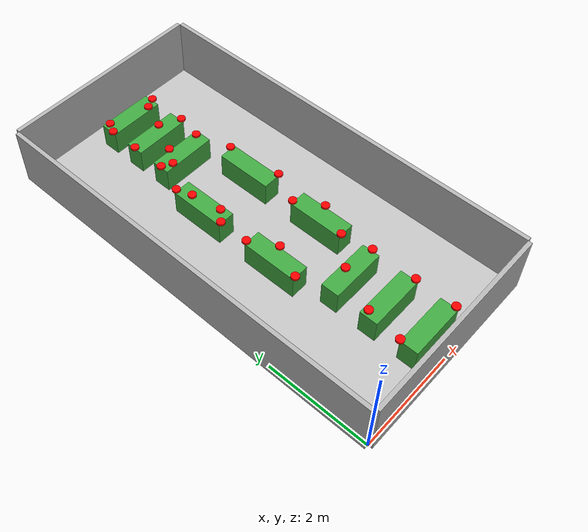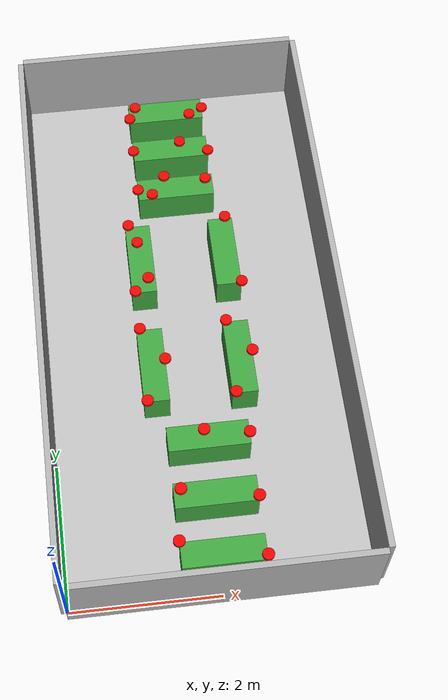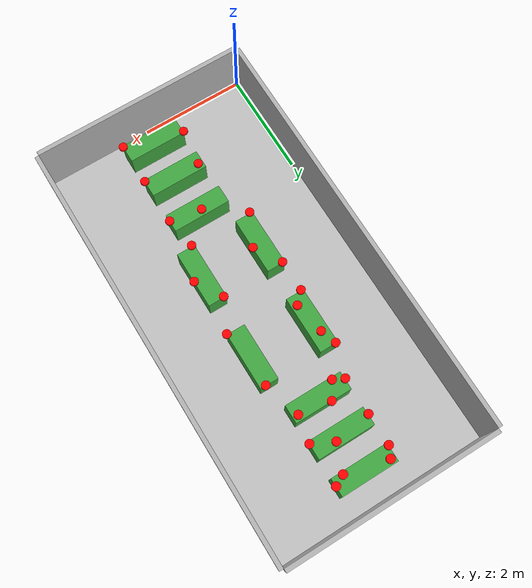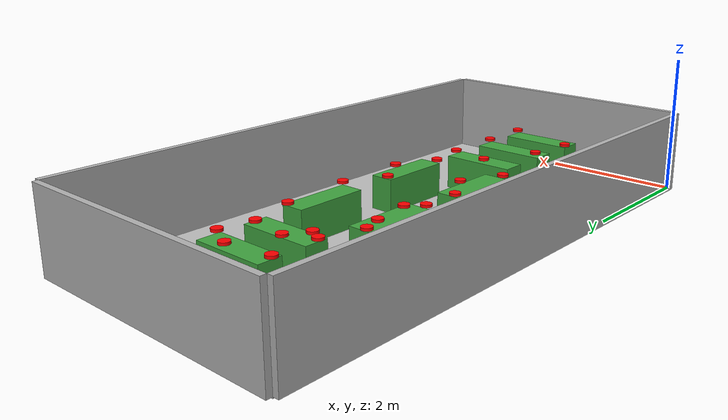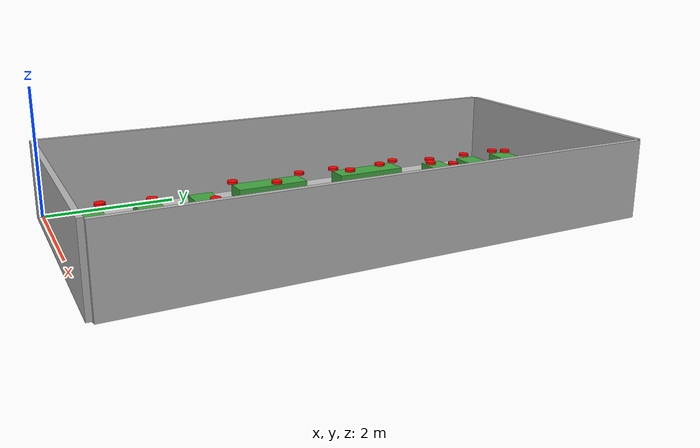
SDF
<?xml version="1.0" ?>
<sdf version="1.6">
  <world name="greenhouse_world">

    <include>
      <uri>model://sun</uri>
    </include>

    <model name="greenhouse_floor">
      <static>true</static>
      <pose>2.000 4.000 -0.010 0 0 0</pose>
      <link name="link">

        <collision name="collision">
          <geometry>
            <box>
              <size>4.000 8.000 0.020</size>
            </box>
          </geometry>
        </collision>

        <visual name="visual">
          <geometry>
            <box>
              <size>4.000 8.000 0.020</size>
            </box>
          </geometry>
          <material>
            <ambient>0.75 0.75 0.75 1</ambient>
            <diffuse>0.75 0.75 0.75 1</diffuse>
          </material>
        </visual>

      </link>
    </model>

    <model name="wall_left">
      <static>true</static>
      <pose>-0.040 4.000 0.600 0 0 0</pose>
      <link name="link">

        <collision name="collision">
          <geometry>
            <box>
              <size>0.080 8.000 1.200</size>
            </box>
          </geometry>
        </collision>

        <visual name="visual">
          <geometry>
            <box>
              <size>0.080 8.000 1.200</size>
            </box>
          </geometry>
          <material>
            <ambient>0.7 0.7 0.7 1</ambient>
            <diffuse>0.7 0.7 0.7 1</diffuse>
          </material>
        </visual>

      </link>
    </model>

    <model name="wall_right">
      <static>true</static>
      <pose>4.040 4.000 0.600 0 0 0</pose>
      <link name="link">

        <collision name="collision">
          <geometry>
            <box>
              <size>0.080 8.000 1.200</size>
            </box>
          </geometry>
        </collision>

        <visual name="visual">
          <geometry>
            <box>
              <size>0.080 8.000 1.200</size>
            </box>
          </geometry>
          <material>
            <ambient>0.7 0.7 0.7 1</ambient>
            <diffuse>0.7 0.7 0.7 1</diffuse>
          </material>
        </visual>

      </link>
    </model>

    <model name="wall_bottom">
      <static>true</static>
      <pose>2.000 -0.040 0.600 0 0 0</pose>
      <link name="link">

        <collision name="collision">
          <geometry>
            <box>
              <size>4.000 0.080 1.200</size>
            </box>
          </geometry>
        </collision>

        <visual name="visual">
          <geometry>
            <box>
              <size>4.000 0.080 1.200</size>
            </box>
          </geometry>
          <material>
            <ambient>0.7 0.7 0.7 1</ambient>
            <diffuse>0.7 0.7 0.7 1</diffuse>
          </material>
        </visual>

      </link>
    </model>

    <model name="wall_top">
      <static>true</static>
      <pose>2.000 8.040 0.600 0 0 0</pose>
      <link name="link">

        <collision name="collision">
          <geometry>
            <box>
              <size>4.000 0.080 1.200</size>
            </box>
          </geometry>
        </collision>

        <visual name="visual">
          <geometry>
            <box>
              <size>4.000 0.080 1.200</size>
            </box>
          </geometry>
          <material>
            <ambient>0.7 0.7 0.7 1</ambient>
            <diffuse>0.7 0.7 0.7 1</diffuse>
          </material>
        </visual>

      </link>
    </model>

    <model name="table1">
      <static>true</static>
      <pose>2.050 7.425 0.250 0 0 0</pose>
      <link name="link">

        <collision name="collision">
          <geometry>
            <box>
              <size>1.100 0.350 0.500</size>
            </box>
          </geometry>
        </collision>

        <visual name="visual">
          <geometry>
            <box>
              <size>1.100 0.350 0.500</size>
            </box>
          </geometry>
          <material>
            <ambient>0.25 0.65 0.25 1</ambient>
            <diffuse>0.25 0.65 0.25 1</diffuse>
          </material>
        </visual>

      </link>
    </model>

    <model name="table2">
      <static>true</static>
      <pose>2.050 6.725 0.250 0 0 0</pose>
      <link name="link">

        <collision name="collision">
          <geometry>
            <box>
              <size>1.100 0.350 0.500</size>
            </box>
          </geometry>
        </collision>

        <visual name="visual">
          <geometry>
            <box>
              <size>1.100 0.350 0.500</size>
            </box>
          </geometry>
          <material>
            <ambient>0.25 0.65 0.25 1</ambient>
            <diffuse>0.25 0.65 0.25 1</diffuse>
          </material>
        </visual>

      </link>
    </model>

    <model name="table3">
      <static>true</static>
      <pose>2.050 6.025 0.250 0 0 0</pose>
      <link name="link">

        <collision name="collision">
          <geometry>
            <box>
              <size>1.100 0.350 0.500</size>
            </box>
          </geometry>
        </collision>

        <visual name="visual">
          <geometry>
            <box>
              <size>1.100 0.350 0.500</size>
            </box>
          </geometry>
          <material>
            <ambient>0.25 0.65 0.25 1</ambient>
            <diffuse>0.25 0.65 0.25 1</diffuse>
          </material>
        </visual>

      </link>
    </model>

    <model name="table4">
      <static>true</static>
      <pose>1.425 4.850 0.250 0 0 0</pose>
      <link name="link">

        <collision name="collision">
          <geometry>
            <box>
              <size>0.350 1.100 0.500</size>
            </box>
          </geometry>
        </collision>

        <visual name="visual">
          <geometry>
            <box>
              <size>0.350 1.100 0.500</size>
            </box>
          </geometry>
          <material>
            <ambient>0.25 0.65 0.25 1</ambient>
            <diffuse>0.25 0.65 0.25 1</diffuse>
          </material>
        </visual>

      </link>
    </model>

    <model name="table5">
      <static>true</static>
      <pose>2.625 4.850 0.250 0 0 0</pose>
      <link name="link">

        <collision name="collision">
          <geometry>
            <box>
              <size>0.350 1.100 0.500</size>
            </box>
          </geometry>
        </collision>

        <visual name="visual">
          <geometry>
            <box>
              <size>0.350 1.100 0.500</size>
            </box>
          </geometry>
          <material>
            <ambient>0.25 0.65 0.25 1</ambient>
            <diffuse>0.25 0.65 0.25 1</diffuse>
          </material>
        </visual>

      </link>
    </model>

    <model name="table6">
      <static>true</static>
      <pose>1.425 3.150 0.250 0 0 0</pose>
      <link name="link">

        <collision name="collision">
          <geometry>
            <box>
              <size>0.350 1.100 0.500</size>
            </box>
          </geometry>
        </collision>

        <visual name="visual">
          <geometry>
            <box>
              <size>0.350 1.100 0.500</size>
            </box>
          </geometry>
          <material>
            <ambient>0.25 0.65 0.25 1</ambient>
            <diffuse>0.25 0.65 0.25 1</diffuse>
          </material>
        </visual>

      </link>
    </model>

    <model name="table7">
      <static>true</static>
      <pose>2.625 3.150 0.250 0 0 0</pose>
      <link name="link">

        <collision name="collision">
          <geometry>
            <box>
              <size>0.350 1.100 0.500</size>
            </box>
          </geometry>
        </collision>

        <visual name="visual">
          <geometry>
            <box>
              <size>0.350 1.100 0.500</size>
            </box>
          </geometry>
          <material>
            <ambient>0.25 0.65 0.25 1</ambient>
            <diffuse>0.25 0.65 0.25 1</diffuse>
          </material>
        </visual>

      </link>
    </model>

    <model name="table8">
      <static>true</static>
      <pose>2.050 2.025 0.250 0 0 0</pose>
      <link name="link">

        <collision name="collision">
          <geometry>
            <box>
              <size>1.100 0.350 0.500</size>
            </box>
          </geometry>
        </collision>

        <visual name="visual">
          <geometry>
            <box>
              <size>1.100 0.350 0.500</size>
            </box>
          </geometry>
          <material>
            <ambient>0.25 0.65 0.25 1</ambient>
            <diffuse>0.25 0.65 0.25 1</diffuse>
          </material>
        </visual>

      </link>
    </model>

    <model name="table9">
      <static>true</static>
      <pose>2.050 1.225 0.250 0 0 0</pose>
      <link name="link">

        <collision name="collision">
          <geometry>
            <box>
              <size>1.100 0.350 0.500</size>
            </box>
          </geometry>
        </collision>

        <visual name="visual">
          <geometry>
            <box>
              <size>1.100 0.350 0.500</size>
            </box>
          </geometry>
          <material>
            <ambient>0.25 0.65 0.25 1</ambient>
            <diffuse>0.25 0.65 0.25 1</diffuse>
          </material>
        </visual>

      </link>
    </model>

    <model name="table10">
      <static>true</static>
      <pose>2.050 0.425 0.250 0 0 0</pose>
      <link name="link">

        <collision name="collision">
          <geometry>
            <box>
              <size>1.100 0.350 0.500</size>
            </box>
          </geometry>
        </collision>

        <visual name="visual">
          <geometry>
            <box>
              <size>1.100 0.350 0.500</size>
            </box>
          </geometry>
          <material>
            <ambient>0.25 0.65 0.25 1</ambient>
            <diffuse>0.25 0.65 0.25 1</diffuse>
          </material>
        </visual>

      </link>
    </model>

    <model name="6">
      <static>true</static>
      <pose>1.500 7.300 0.550 0 0 0</pose>
      <link name="link">

        <visual name="visual">
          <geometry>
            <cylinder>
              <radius>0.080</radius>
              <length>0.040</length>
            </cylinder>
          </geometry>
          <material>
            <ambient>1 0 0 1</ambient>
            <diffuse>1 0 0 1</diffuse>
          </material>
        </visual>

      </link>
    </model>

    <model name="21">
      <static>true</static>
      <pose>1.600 7.500 0.550 0 0 0</pose>
      <link name="link">

        <visual name="visual">
          <geometry>
            <cylinder>
              <radius>0.080</radius>
              <length>0.040</length>
            </cylinder>
          </geometry>
          <material>
            <ambient>1 0 0 1</ambient>
            <diffuse>1 0 0 1</diffuse>
          </material>
        </visual>

      </link>
    </model>

    <model name="29">
      <static>true</static>
      <pose>2.400 7.300 0.550 0 0 0</pose>
      <link name="link">

        <visual name="visual">
          <geometry>
            <cylinder>
              <radius>0.080</radius>
              <length>0.040</length>
            </cylinder>
          </geometry>
          <material>
            <ambient>1 0 0 1</ambient>
            <diffuse>1 0 0 1</diffuse>
          </material>
        </visual>

      </link>
    </model>

    <model name="7">
      <static>true</static>
      <pose>2.600 7.400 0.550 0 0 0</pose>
      <link name="link">

        <visual name="visual">
          <geometry>
            <cylinder>
              <radius>0.080</radius>
              <length>0.040</length>
            </cylinder>
          </geometry>
          <material>
            <ambient>1 0 0 1</ambient>
            <diffuse>1 0 0 1</diffuse>
          </material>
        </visual>

      </link>
    </model>

    <model name="30">
      <static>true</static>
      <pose>1.500 6.700 0.550 0 0 0</pose>
      <link name="link">

        <visual name="visual">
          <geometry>
            <cylinder>
              <radius>0.080</radius>
              <length>0.040</length>
            </cylinder>
          </geometry>
          <material>
            <ambient>1 0 0 1</ambient>
            <diffuse>1 0 0 1</diffuse>
          </material>
        </visual>

      </link>
    </model>

    <model name="25">
      <static>true</static>
      <pose>2.200 6.800 0.550 0 0 0</pose>
      <link name="link">

        <visual name="visual">
          <geometry>
            <cylinder>
              <radius>0.080</radius>
              <length>0.040</length>
            </cylinder>
          </geometry>
          <material>
            <ambient>1 0 0 1</ambient>
            <diffuse>1 0 0 1</diffuse>
          </material>
        </visual>

      </link>
    </model>

    <model name="9">
      <static>true</static>
      <pose>2.600 6.600 0.550 0 0 0</pose>
      <link name="link">

        <visual name="visual">
          <geometry>
            <cylinder>
              <radius>0.080</radius>
              <length>0.040</length>
            </cylinder>
          </geometry>
          <material>
            <ambient>1 0 0 1</ambient>
            <diffuse>1 0 0 1</diffuse>
          </material>
        </visual>

      </link>
    </model>

    <model name="27">
      <static>true</static>
      <pose>2.500 6.100 0.550 0 0 0</pose>
      <link name="link">

        <visual name="visual">
          <geometry>
            <cylinder>
              <radius>0.080</radius>
              <length>0.040</length>
            </cylinder>
          </geometry>
          <material>
            <ambient>1 0 0 1</ambient>
            <diffuse>1 0 0 1</diffuse>
          </material>
        </visual>

      </link>
    </model>

    <model name="26">
      <static>true</static>
      <pose>1.900 6.200 0.550 0 0 0</pose>
      <link name="link">

        <visual name="visual">
          <geometry>
            <cylinder>
              <radius>0.080</radius>
              <length>0.040</length>
            </cylinder>
          </geometry>
          <material>
            <ambient>1 0 0 1</ambient>
            <diffuse>1 0 0 1</diffuse>
          </material>
        </visual>

      </link>
    </model>

    <model name="15">
      <static>true</static>
      <pose>1.700 5.900 0.550 0 0 0</pose>
      <link name="link">

        <visual name="visual">
          <geometry>
            <cylinder>
              <radius>0.080</radius>
              <length>0.040</length>
            </cylinder>
          </geometry>
          <material>
            <ambient>1 0 0 1</ambient>
            <diffuse>1 0 0 1</diffuse>
          </material>
        </visual>

      </link>
    </model>

    <model name="22">
      <static>true</static>
      <pose>1.500 6.000 0.550 0 0 0</pose>
      <link name="link">

        <visual name="visual">
          <geometry>
            <cylinder>
              <radius>0.080</radius>
              <length>0.040</length>
            </cylinder>
          </geometry>
          <material>
            <ambient>1 0 0 1</ambient>
            <diffuse>1 0 0 1</diffuse>
          </material>
        </visual>

      </link>
    </model>

    <model name="24">
      <static>true</static>
      <pose>2.700 5.400 0.550 0 0 0</pose>
      <link name="link">

        <visual name="visual">
          <geometry>
            <cylinder>
              <radius>0.080</radius>
              <length>0.040</length>
            </cylinder>
          </geometry>
          <material>
            <ambient>1 0 0 1</ambient>
            <diffuse>1 0 0 1</diffuse>
          </material>
        </visual>

      </link>
    </model>

    <model name="3">
      <static>true</static>
      <pose>2.800 4.300 0.550 0 0 0</pose>
      <link name="link">

        <visual name="visual">
          <geometry>
            <cylinder>
              <radius>0.080</radius>
              <length>0.040</length>
            </cylinder>
          </geometry>
          <material>
            <ambient>1 0 0 1</ambient>
            <diffuse>1 0 0 1</diffuse>
          </material>
        </visual>

      </link>
    </model>

    <model name="14">
      <static>true</static>
      <pose>1.300 4.300 0.550 0 0 0</pose>
      <link name="link">

        <visual name="visual">
          <geometry>
            <cylinder>
              <radius>0.080</radius>
              <length>0.040</length>
            </cylinder>
          </geometry>
          <material>
            <ambient>1 0 0 1</ambient>
            <diffuse>1 0 0 1</diffuse>
          </material>
        </visual>

      </link>
    </model>

    <model name="23">
      <static>true</static>
      <pose>1.500 4.500 0.550 0 0 0</pose>
      <link name="link">

        <visual name="visual">
          <geometry>
            <cylinder>
              <radius>0.080</radius>
              <length>0.040</length>
            </cylinder>
          </geometry>
          <material>
            <ambient>1 0 0 1</ambient>
            <diffuse>1 0 0 1</diffuse>
          </material>
        </visual>

      </link>
    </model>

    <model name="11">
      <static>true</static>
      <pose>1.400 5.100 0.550 0 0 0</pose>
      <link name="link">

        <visual name="visual">
          <geometry>
            <cylinder>
              <radius>0.080</radius>
              <length>0.040</length>
            </cylinder>
          </geometry>
          <material>
            <ambient>1 0 0 1</ambient>
            <diffuse>1 0 0 1</diffuse>
          </material>
        </visual>

      </link>
    </model>

    <model name="28">
      <static>true</static>
      <pose>1.300 5.400 0.550 0 0 0</pose>
      <link name="link">

        <visual name="visual">
          <geometry>
            <cylinder>
              <radius>0.080</radius>
              <length>0.040</length>
            </cylinder>
          </geometry>
          <material>
            <ambient>1 0 0 1</ambient>
            <diffuse>1 0 0 1</diffuse>
          </material>
        </visual>

      </link>
    </model>

    <model name="4">
      <static>true</static>
      <pose>2.500 3.700 0.550 0 0 0</pose>
      <link name="link">

        <visual name="visual">
          <geometry>
            <cylinder>
              <radius>0.080</radius>
              <length>0.040</length>
            </cylinder>
          </geometry>
          <material>
            <ambient>1 0 0 1</ambient>
            <diffuse>1 0 0 1</diffuse>
          </material>
        </visual>

      </link>
    </model>

    <model name="20">
      <static>true</static>
      <pose>2.800 3.200 0.550 0 0 0</pose>
      <link name="link">

        <visual name="visual">
          <geometry>
            <cylinder>
              <radius>0.080</radius>
              <length>0.040</length>
            </cylinder>
          </geometry>
          <material>
            <ambient>1 0 0 1</ambient>
            <diffuse>1 0 0 1</diffuse>
          </material>
        </visual>

      </link>
    </model>

    <model name="13">
      <static>true</static>
      <pose>2.500 2.600 0.550 0 0 0</pose>
      <link name="link">

        <visual name="visual">
          <geometry>
            <cylinder>
              <radius>0.080</radius>
              <length>0.040</length>
            </cylinder>
          </geometry>
          <material>
            <ambient>1 0 0 1</ambient>
            <diffuse>1 0 0 1</diffuse>
          </material>
        </visual>

      </link>
    </model>

    <model name="10">
      <static>true</static>
      <pose>1.300 3.700 0.550 0 0 0</pose>
      <link name="link">

        <visual name="visual">
          <geometry>
            <cylinder>
              <radius>0.080</radius>
              <length>0.040</length>
            </cylinder>
          </geometry>
          <material>
            <ambient>1 0 0 1</ambient>
            <diffuse>1 0 0 1</diffuse>
          </material>
        </visual>

      </link>
    </model>

    <model name="12">
      <static>true</static>
      <pose>1.600 3.200 0.550 0 0 0</pose>
      <link name="link">

        <visual name="visual">
          <geometry>
            <cylinder>
              <radius>0.080</radius>
              <length>0.040</length>
            </cylinder>
          </geometry>
          <material>
            <ambient>1 0 0 1</ambient>
            <diffuse>1 0 0 1</diffuse>
          </material>
        </visual>

      </link>
    </model>

    <model name="18">
      <static>true</static>
      <pose>1.300 2.600 0.550 0 0 0</pose>
      <link name="link">

        <visual name="visual">
          <geometry>
            <cylinder>
              <radius>0.080</radius>
              <length>0.040</length>
            </cylinder>
          </geometry>
          <material>
            <ambient>1 0 0 1</ambient>
            <diffuse>1 0 0 1</diffuse>
          </material>
        </visual>

      </link>
    </model>

    <model name="5">
      <static>true</static>
      <pose>2.600 2.000 0.550 0 0 0</pose>
      <link name="link">

        <visual name="visual">
          <geometry>
            <cylinder>
              <radius>0.080</radius>
              <length>0.040</length>
            </cylinder>
          </geometry>
          <material>
            <ambient>1 0 0 1</ambient>
            <diffuse>1 0 0 1</diffuse>
          </material>
        </visual>

      </link>
    </model>

    <model name="16">
      <static>true</static>
      <pose>2.000 2.100 0.550 0 0 0</pose>
      <link name="link">

        <visual name="visual">
          <geometry>
            <cylinder>
              <radius>0.080</radius>
              <length>0.040</length>
            </cylinder>
          </geometry>
          <material>
            <ambient>1 0 0 1</ambient>
            <diffuse>1 0 0 1</diffuse>
          </material>
        </visual>

      </link>
    </model>

    <model name="1">
      <static>true</static>
      <pose>1.600 1.300 0.550 0 0 0</pose>
      <link name="link">

        <visual name="visual">
          <geometry>
            <cylinder>
              <radius>0.080</radius>
              <length>0.040</length>
            </cylinder>
          </geometry>
          <material>
            <ambient>1 0 0 1</ambient>
            <diffuse>1 0 0 1</diffuse>
          </material>
        </visual>

      </link>
    </model>

    <model name="17">
      <static>true</static>
      <pose>2.600 1.100 0.550 0 0 0</pose>
      <link name="link">

        <visual name="visual">
          <geometry>
            <cylinder>
              <radius>0.080</radius>
              <length>0.040</length>
            </cylinder>
          </geometry>
          <material>
            <ambient>1 0 0 1</ambient>
            <diffuse>1 0 0 1</diffuse>
          </material>
        </visual>

      </link>
    </model>

    <model name="2">
      <static>true</static>
      <pose>2.600 0.300 0.550 0 0 0</pose>
      <link name="link">

        <visual name="visual">
          <geometry>
            <cylinder>
              <radius>0.080</radius>
              <length>0.040</length>
            </cylinder>
          </geometry>
          <material>
            <ambient>1 0 0 1</ambient>
            <diffuse>1 0 0 1</diffuse>
          </material>
        </visual>

      </link>
    </model>

    <model name="19">
      <static>true</static>
      <pose>1.500 0.600 0.550 0 0 0</pose>
      <link name="link">

        <visual name="visual">
          <geometry>
            <cylinder>
              <radius>0.080</radius>
              <length>0.040</length>
            </cylinder>
          </geometry>
          <material>
            <ambient>1 0 0 1</ambient>
            <diffuse>1 0 0 1</diffuse>
          </material>
        </visual>

      </link>
    </model>

  </world>
</sdf>
